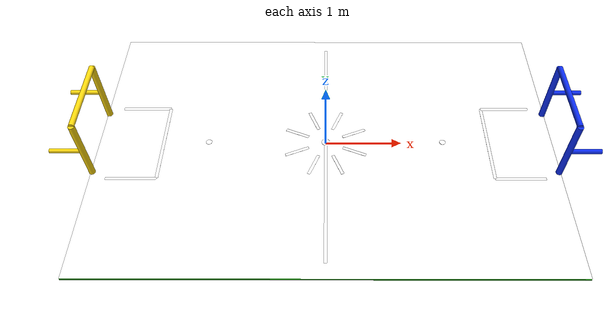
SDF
<?xml version="1.0"?>
<sdf version="1.8">
  <model name="robocup_2009_spl_field">
    <static>true</static>
    <link name="field">
      <collision name="field_collision">
        <geometry>
          <box>
            <size>6.0 4.0 0.02</size>
          </box>
        </geometry>
      </collision>
      <visual name="green_field">
        <pose>0 0 0.0 0 0 0</pose>
        <geometry>
          <box>
            <size>6.0 4.0 0.02</size>
          </box>
        </geometry>
        <material>
          <ambient>0.12 0.48 0.08 1</ambient>
          <diffuse>0.15 0.65 0.10 1</diffuse>
        </material>
      </visual>
      <visual name="hd_field_texture">
        <pose>0 0 0.031 0 0 0</pose>
        <geometry>
          <plane>
            <normal>0 0 1</normal>
            <size>6.0 4.0</size>
          </plane>
        </geometry>
        <material>
          <pbr>
            <metal>
              <albedo_map>materials/textures/robocup_field_hd.png</albedo_map>
              <roughness>1.0</roughness>
              <metalness>0.0</metalness>
            </metal>
          </pbr>
          <ambient>1 1 1 1</ambient>
          <diffuse>1 1 1 1</diffuse>
          <lighting>false</lighting>
        </material>
      </visual>

      <visual name="line_left">
        <pose>-2.8 0 0.018 0 0 0</pose>
        <geometry><box><size>0.05 3.6 0.01</size></box></geometry>
        <material><ambient>1 1 1 1</ambient><diffuse>1 1 1 1</diffuse></material>
      </visual>
      <visual name="line_right">
        <pose>2.8 0 0.018 0 0 0</pose>
        <geometry><box><size>0.05 3.6 0.01</size></box></geometry>
        <material><ambient>1 1 1 1</ambient><diffuse>1 1 1 1</diffuse></material>
      </visual>
      <visual name="line_top">
        <pose>0 1.8 0.018 0 0 0</pose>
        <geometry><box><size>5.6 0.05 0.01</size></box></geometry>
        <material><ambient>1 1 1 1</ambient><diffuse>1 1 1 1</diffuse></material>
      </visual>
      <visual name="line_bottom">
        <pose>0 -1.8 0.018 0 0 0</pose>
        <geometry><box><size>5.6 0.05 0.01</size></box></geometry>
        <material><ambient>1 1 1 1</ambient><diffuse>1 1 1 1</diffuse></material>
      </visual>
      <visual name="midline">
        <pose>0 0 0.019 0 0 0</pose>
        <geometry><box><size>0.04 3.6 0.01</size></box></geometry>
        <material><ambient>1 1 1 1</ambient><diffuse>1 1 1 1</diffuse></material>
      </visual>
      <visual name="center_circle_01">
        <pose>0.376 0.156 0.019 0 0 1.9635</pose>
        <geometry><box><size>0.04 0.325 0.01</size></box></geometry>
        <material><ambient>1 1 1 1</ambient><diffuse>1 1 1 1</diffuse></material>
      </visual>
      <visual name="center_circle_02">
        <pose>0.156 0.376 0.019 0 0 2.7489</pose>
        <geometry><box><size>0.04 0.325 0.01</size></box></geometry>
        <material><ambient>1 1 1 1</ambient><diffuse>1 1 1 1</diffuse></material>
      </visual>
      <visual name="center_circle_03">
        <pose>-0.156 0.376 0.019 0 0 -2.7489</pose>
        <geometry><box><size>0.04 0.325 0.01</size></box></geometry>
        <material><ambient>1 1 1 1</ambient><diffuse>1 1 1 1</diffuse></material>
      </visual>
      <visual name="center_circle_04">
        <pose>-0.376 0.156 0.019 0 0 -1.9635</pose>
        <geometry><box><size>0.04 0.325 0.01</size></box></geometry>
        <material><ambient>1 1 1 1</ambient><diffuse>1 1 1 1</diffuse></material>
      </visual>
      <visual name="center_circle_05">
        <pose>-0.376 -0.156 0.019 0 0 -1.1781</pose>
        <geometry><box><size>0.04 0.325 0.01</size></box></geometry>
        <material><ambient>1 1 1 1</ambient><diffuse>1 1 1 1</diffuse></material>
      </visual>
      <visual name="center_circle_06">
        <pose>-0.156 -0.376 0.019 0 0 -0.3927</pose>
        <geometry><box><size>0.04 0.325 0.01</size></box></geometry>
        <material><ambient>1 1 1 1</ambient><diffuse>1 1 1 1</diffuse></material>
      </visual>
      <visual name="center_circle_07">
        <pose>0.156 -0.376 0.019 0 0 0.3927</pose>
        <geometry><box><size>0.04 0.325 0.01</size></box></geometry>
        <material><ambient>1 1 1 1</ambient><diffuse>1 1 1 1</diffuse></material>
      </visual>
      <visual name="center_circle_08">
        <pose>0.376 -0.156 0.019 0 0 1.1781</pose>
        <geometry><box><size>0.04 0.325 0.01</size></box></geometry>
        <material><ambient>1 1 1 1</ambient><diffuse>1 1 1 1</diffuse></material>
      </visual>
      <visual name="center_spot">
        <pose>0 0 0.022 0 0 0</pose>
        <geometry><cylinder><radius>0.055</radius><length>0.01</length></cylinder></geometry>
        <material><ambient>1 1 1 1</ambient><diffuse>1 1 1 1</diffuse></material>
      </visual>

      <visual name="left_goal_box_front">
        <pose>-2.15 0 0.019 0 0 0</pose>
        <geometry><box><size>0.04 1.2 0.01</size></box></geometry>
        <material><ambient>1 1 1 1</ambient><diffuse>1 1 1 1</diffuse></material>
      </visual>
      <visual name="left_goal_box_top">
        <pose>-2.475 0.6 0.019 0 0 0</pose>
        <geometry><box><size>0.65 0.04 0.01</size></box></geometry>
        <material><ambient>1 1 1 1</ambient><diffuse>1 1 1 1</diffuse></material>
      </visual>
      <visual name="left_goal_box_bottom">
        <pose>-2.475 -0.6 0.019 0 0 0</pose>
        <geometry><box><size>0.65 0.04 0.01</size></box></geometry>
        <material><ambient>1 1 1 1</ambient><diffuse>1 1 1 1</diffuse></material>
      </visual>
      <visual name="left_penalty_mark">
        <pose>-1.55 0 0.022 0 0 0</pose>
        <geometry><cylinder><radius>0.04</radius><length>0.01</length></cylinder></geometry>
        <material><ambient>1 1 1 1</ambient><diffuse>1 1 1 1</diffuse></material>
      </visual>

      <visual name="right_goal_box_front">
        <pose>2.15 0 0.019 0 0 0</pose>
        <geometry><box><size>0.04 1.2 0.01</size></box></geometry>
        <material><ambient>1 1 1 1</ambient><diffuse>1 1 1 1</diffuse></material>
      </visual>
      <visual name="right_goal_box_top">
        <pose>2.475 0.6 0.019 0 0 0</pose>
        <geometry><box><size>0.65 0.04 0.01</size></box></geometry>
        <material><ambient>1 1 1 1</ambient><diffuse>1 1 1 1</diffuse></material>
      </visual>
      <visual name="right_goal_box_bottom">
        <pose>2.475 -0.6 0.019 0 0 0</pose>
        <geometry><box><size>0.65 0.04 0.01</size></box></geometry>
        <material><ambient>1 1 1 1</ambient><diffuse>1 1 1 1</diffuse></material>
      </visual>
      <visual name="right_penalty_mark">
        <pose>1.55 0 0.022 0 0 0</pose>
        <geometry><cylinder><radius>0.04</radius><length>0.01</length></cylinder></geometry>
        <material><ambient>1 1 1 1</ambient><diffuse>1 1 1 1</diffuse></material>
      </visual>

      <visual name="left_goal_post_top">
        <pose>-2.98 0.5 0.45 0 0 0</pose>
        <geometry><cylinder><radius>0.04</radius><length>0.9</length></cylinder></geometry>
        <material><ambient>1 0.85 0.05 1</ambient><diffuse>1 0.85 0.05 1</diffuse></material>
      </visual>
      <visual name="left_goal_post_bottom">
        <pose>-2.98 -0.5 0.45 0 0 0</pose>
        <geometry><cylinder><radius>0.04</radius><length>0.9</length></cylinder></geometry>
        <material><ambient>1 0.85 0.05 1</ambient><diffuse>1 0.85 0.05 1</diffuse></material>
      </visual>
      <visual name="left_goal_crossbar">
        <pose>-2.98 0 0.9 1.5708 0 0</pose>
        <geometry><cylinder><radius>0.035</radius><length>1.0</length></cylinder></geometry>
        <material><ambient>1 0.85 0.05 1</ambient><diffuse>1 0.85 0.05 1</diffuse></material>
      </visual>
      <visual name="left_goal_back_bar_top">
        <pose>-3.18 0.5 0.45 0 1.5708 0</pose>
        <geometry><cylinder><radius>0.03</radius><length>0.4</length></cylinder></geometry>
        <material><ambient>1 0.85 0.05 1</ambient><diffuse>1 0.85 0.05 1</diffuse></material>
      </visual>
      <visual name="left_goal_back_bar_bottom">
        <pose>-3.18 -0.5 0.45 0 1.5708 0</pose>
        <geometry><cylinder><radius>0.03</radius><length>0.4</length></cylinder></geometry>
        <material><ambient>1 0.85 0.05 1</ambient><diffuse>1 0.85 0.05 1</diffuse></material>
      </visual>

      <visual name="right_goal_post_top">
        <pose>2.98 0.5 0.45 0 0 0</pose>
        <geometry><cylinder><radius>0.04</radius><length>0.9</length></cylinder></geometry>
        <material><ambient>0.05 0.18 0.95 1</ambient><diffuse>0.05 0.18 0.95 1</diffuse></material>
      </visual>
      <visual name="right_goal_post_bottom">
        <pose>2.98 -0.5 0.45 0 0 0</pose>
        <geometry><cylinder><radius>0.04</radius><length>0.9</length></cylinder></geometry>
        <material><ambient>0.05 0.18 0.95 1</ambient><diffuse>0.05 0.18 0.95 1</diffuse></material>
      </visual>
      <visual name="right_goal_crossbar">
        <pose>2.98 0 0.9 1.5708 0 0</pose>
        <geometry><cylinder><radius>0.035</radius><length>1.0</length></cylinder></geometry>
        <material><ambient>0.05 0.18 0.95 1</ambient><diffuse>0.05 0.18 0.95 1</diffuse></material>
      </visual>
      <visual name="right_goal_back_bar_top">
        <pose>3.18 0.5 0.45 0 1.5708 0</pose>
        <geometry><cylinder><radius>0.03</radius><length>0.4</length></cylinder></geometry>
        <material><ambient>0.05 0.18 0.95 1</ambient><diffuse>0.05 0.18 0.95 1</diffuse></material>
      </visual>
      <visual name="right_goal_back_bar_bottom">
        <pose>3.18 -0.5 0.45 0 1.5708 0</pose>
        <geometry><cylinder><radius>0.03</radius><length>0.4</length></cylinder></geometry>
        <material><ambient>0.05 0.18 0.95 1</ambient><diffuse>0.05 0.18 0.95 1</diffuse></material>
      </visual>
    </link>
  </model>
</sdf>
